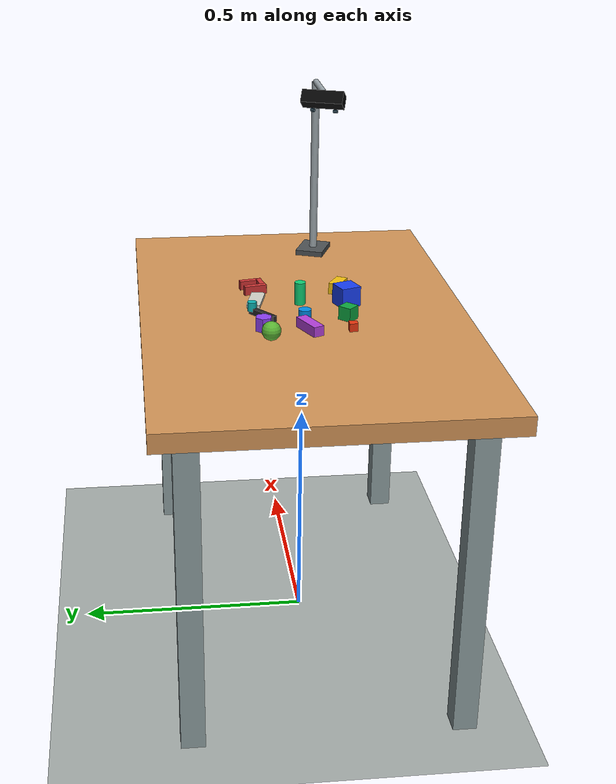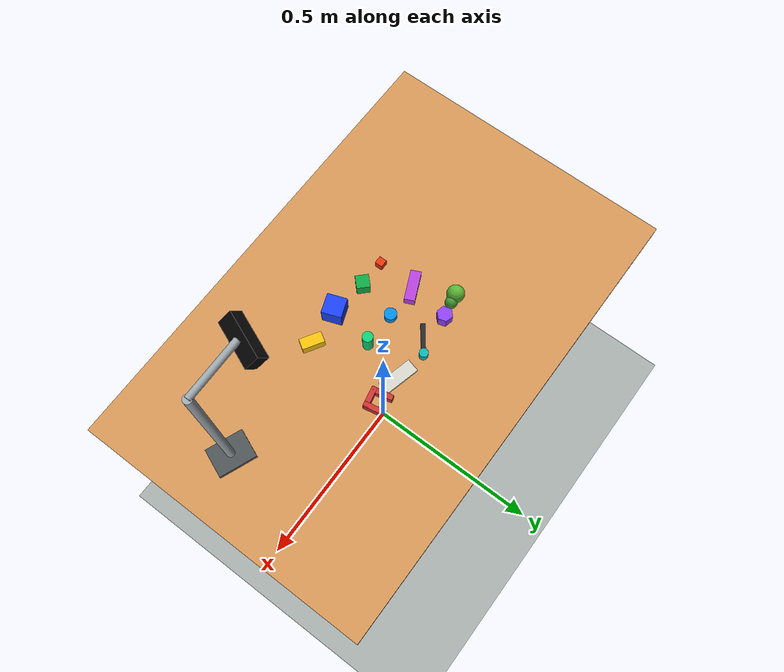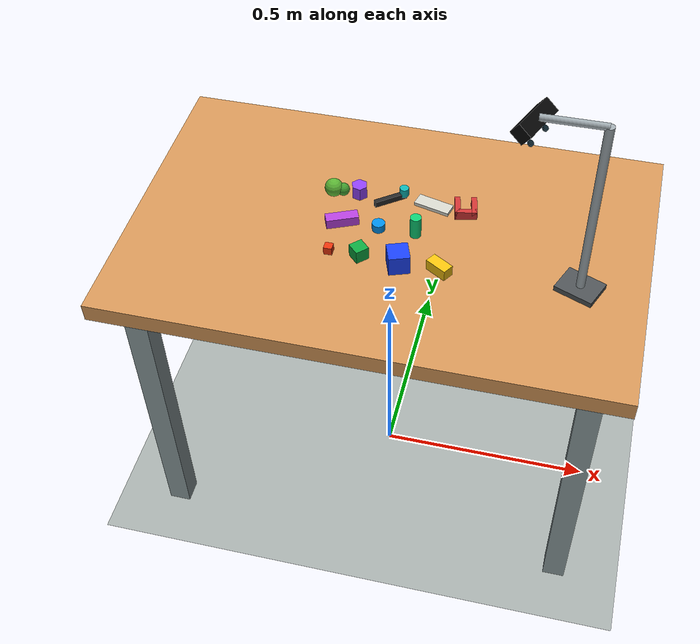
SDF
<sdf version="1.9">
 <world name="ghost_mgg_m8_shape_library">
  <plugin filename="gz-sim-physics-system" name="gz::sim::systems::Physics"/>
  <plugin filename="gz-sim-sensors-system" name="gz::sim::systems::Sensors">
   <render_engine>ogre2</render_engine>
  </plugin>
  <plugin filename="gz-sim-user-commands-system" name="gz::sim::systems::UserCommands"/>
  <plugin filename="gz-sim-scene-broadcaster-system" name="gz::sim::systems::SceneBroadcaster"/>
  <scene>
   <ambient>0.55 0.58 0.62 1</ambient>
   <background>0.78 0.84 0.90 1</background>
   <shadows>false</shadows>
  </scene>
  <light name="key_light" type="directional">
   <pose>-1.5 -2.0 4.0 0 0 0</pose>
   <cast_shadows>false</cast_shadows>
   <diffuse>0.95 0.92 0.86 1</diffuse>
   <specular>0.35 0.35 0.35 1</specular>
   <direction>-0.55 0.18 -1.0</direction>
  </light>
  <model name="ground_plane">
   <static>true</static>
   <link name="ground_link">
    <collision name="ground_collision">
     <geometry><plane><normal>0 0 1</normal><size>5 5</size></plane></geometry>
    </collision>
    <visual name="ground_visual">
     <geometry><plane><normal>0 0 1</normal><size>5 5</size></plane></geometry>
     <material><ambient>0.50 0.53 0.52 1</ambient><diffuse>0.64 0.67 0.66 1</diffuse></material>
    </visual>
   </link>
  </model>
  <include><name>table</name><uri>model://table</uri></include>
  <include>
   <name>d435_stand_only</name>
   <uri>model://d435_stand_only</uri>
   <pose>0.410788 -0.079176 0.740000 0 0 -0.386880</pose>
  </include>
  <include>
   <name>d435_camera_head</name>
   <uri>model://d435_camera_head</uri>
   <pose>0.286775 -0.079936 1.105590 0 0.950000 2.754700</pose>
  </include>
  <include>
   <name>m8_small_cube</name>
   <uri>model://m8_small_cube</uri>
   <pose>-0.110 -0.090 0.749000 0 0 0.000</pose>
  </include>
  <include>
   <name>m8_medium_cube</name>
   <uri>model://m8_medium_cube</uri>
   <pose>-0.045 -0.090 0.755000 0 0 0.785</pose>
  </include>
  <include>
   <name>m8_large_cube</name>
   <uri>model://m8_large_cube</uri>
   <pose>0.040 -0.100 0.762500 0 0 0.350</pose>
  </include>
  <include>
   <name>m8_rect_box_2x1</name>
   <uri>model://m8_rect_box_2x1</uri>
   <pose>0.125 -0.095 0.752500 0 0 -0.550</pose>
  </include>
  <include>
   <name>m8_rect_box_3x1</name>
   <uri>model://m8_rect_box_3x1</uri>
   <pose>-0.105 0.000 0.751000 0 0 0.420</pose>
  </include>
  <include>
   <name>m8_short_cylinder</name>
   <uri>model://m8_short_cylinder</uri>
   <pose>-0.025 0.000 0.749000 0 0 0</pose>
  </include>
  <include>
   <name>m8_tall_cylinder</name>
   <uri>model://m8_tall_cylinder</uri>
   <pose>0.055 0.000 0.765000 0 0 0</pose>
  </include>
  <include>
   <name>m8_hex_prism</name>
   <uri>model://m8_hex_prism</uri>
   <pose>-0.090 0.095 0.755000 0 0 -0.250</pose>
  </include>
  <model name="m8_unknown_handle_target">
   <pose>-0.020 0.090 0.747000 0 0 0.650</pose>
   <static>false</static>
   <link name="body">
    <inertial>
     <mass>0.018</mass>
     <inertia><ixx>0.000002</ixx><iyy>0.000002</iyy><izz>0.000002</izz></inertia>
    </inertial>
    <visual name="bar_visual">
     <geometry><box><size>0.075 0.010 0.014</size></box></geometry>
     <material><ambient>0.15 0.15 0.15 1</ambient><diffuse>0.15 0.15 0.15 1</diffuse></material>
    </visual>
    <visual name="grip_visual">
     <pose>0.033 0 0.010 0 0 0</pose>
     <geometry><cylinder><radius>0.010</radius><length>0.020</length></cylinder></geometry>
     <material><ambient>0.05 0.7 0.7 1</ambient><diffuse>0.05 0.7 0.7 1</diffuse></material>
    </visual>
    <collision name="bar_collision"><geometry><box><size>0.075 0.010 0.014</size></box></geometry></collision>
    <collision name="grip_collision">
     <pose>0.033 0 0.010 0 0 0</pose>
     <geometry><cylinder><radius>0.010</radius><length>0.020</length></cylinder></geometry>
    </collision>
   </link>
  </model>
  <model name="m8_unknown_thin_plate">
   <pose>0.075 0.095 0.744000 0 0 -0.250</pose>
   <static>false</static>
   <link name="body">
    <inertial>
     <mass>0.012</mass>
     <inertia><ixx>0.000001</ixx><iyy>0.000001</iyy><izz>0.000001</izz></inertia>
    </inertial>
    <visual name="visual">
     <geometry><box><size>0.080 0.030 0.008</size></box></geometry>
     <material><ambient>0.82 0.82 0.78 1</ambient><diffuse>0.82 0.82 0.78 1</diffuse></material>
    </visual>
    <collision name="collision"><geometry><box><size>0.080 0.030 0.008</size></box></geometry></collision>
   </link>
  </model>
  <model name="m8_unknown_concave_target">
   <pose>0.145 0.095 0.750000 0 0 0.200</pose>
   <static>false</static>
   <link name="body">
    <inertial>
     <mass>0.025</mass>
     <inertia><ixx>0.000003</ixx><iyy>0.000003</iyy><izz>0.000003</izz></inertia>
    </inertial>
    <visual name="left">
     <pose>-0.018 0 0 0 0 0</pose>
     <geometry><box><size>0.012 0.050 0.020</size></box></geometry>
     <material><ambient>0.8 0.2 0.2 1</ambient><diffuse>0.8 0.2 0.2 1</diffuse></material>
    </visual>
    <visual name="right">
     <pose>0.018 0 0 0 0 0</pose>
     <geometry><box><size>0.012 0.050 0.020</size></box></geometry>
     <material><ambient>0.8 0.2 0.2 1</ambient><diffuse>0.8 0.2 0.2 1</diffuse></material>
    </visual>
    <visual name="base">
     <pose>0 -0.019 0 0 0 0</pose>
     <geometry><box><size>0.048 0.012 0.020</size></box></geometry>
     <material><ambient>0.8 0.2 0.2 1</ambient><diffuse>0.8 0.2 0.2 1</diffuse></material>
    </visual>
    <collision name="left_collision">
     <pose>-0.018 0 0 0 0 0</pose>
     <geometry><box><size>0.012 0.050 0.020</size></box></geometry>
    </collision>
    <collision name="right_collision">
     <pose>0.018 0 0 0 0 0</pose>
     <geometry><box><size>0.012 0.050 0.020</size></box></geometry>
    </collision>
    <collision name="base_collision">
     <pose>0 -0.019 0 0 0 0</pose>
     <geometry><box><size>0.048 0.012 0.020</size></box></geometry>
    </collision>
   </link>
  </model>
  <model name="m8_unknown_blob_target">
   <pose>-0.145 0.085 0.760000 0 0 -0.350</pose>
   <static>false</static>
   <link name="body">
    <inertial>
     <mass>0.020</mass>
     <inertia><ixx>0.000002</ixx><iyy>0.000002</iyy><izz>0.000002</izz></inertia>
    </inertial>
    <visual name="core">
     <geometry><sphere><radius>0.020</radius></sphere></geometry>
     <material><ambient>0.35 0.70 0.20 1</ambient><diffuse>0.35 0.70 0.20 1</diffuse></material>
    </visual>
    <visual name="lobe">
     <pose>0.018 0.010 -0.004 0 0 0</pose>
     <geometry><sphere><radius>0.014</radius></sphere></geometry>
     <material><ambient>0.25 0.60 0.18 1</ambient><diffuse>0.25 0.60 0.18 1</diffuse></material>
    </visual>
    <collision name="core_collision"><geometry><sphere><radius>0.020</radius></sphere></geometry></collision>
    <collision name="lobe_collision">
     <pose>0.018 0.010 -0.004 0 0 0</pose>
     <geometry><sphere><radius>0.014</radius></sphere></geometry>
    </collision>
   </link>
  </model>
 </world>
</sdf>

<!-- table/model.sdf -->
<sdf version="1.9">
  <model name="table">
    <static>true</static>

    <link name="table_link">
      <visual name="top_visual">
        <pose>0 0 0.72 0 0 0</pose>
        <geometry>
          <box>
            <size>1.10 0.70 0.04</size>
          </box>
        </geometry>
        <material>
          <ambient>0.70 0.48 0.28 1</ambient>
          <diffuse>0.82 0.58 0.34 1</diffuse>
          <specular>0.15 0.12 0.08 1</specular>
        </material>
      </visual>
      <collision name="top_collision">
        <pose>0 0 0.72 0 0 0</pose>
        <geometry>
          <box>
            <size>1.10 0.70 0.04</size>
          </box>
        </geometry>
        <surface>
          <friction>
            <ode>
              <mu>1.2</mu>
              <mu2>1.2</mu2>
            </ode>
          </friction>
          <contact>
            <ode>
              <kp>1000000.0</kp>
              <kd>10.0</kd>
            </ode>
          </contact>
        </surface>
      </collision>

      <visual name="leg_front_left_visual">
        <pose>0.47 0.28 0.35 0 0 0</pose>
        <geometry>
          <box>
            <size>0.05 0.05 0.70</size>
          </box>
        </geometry>
        <material>
          <ambient>0.44 0.49 0.50 1</ambient>
          <diffuse>0.55 0.61 0.62 1</diffuse>
          <specular>0.25 0.25 0.25 1</specular>
        </material>
      </visual>
      <collision name="leg_front_left_collision">
        <pose>0.47 0.28 0.35 0 0 0</pose>
        <geometry>
          <box>
            <size>0.05 0.05 0.70</size>
          </box>
        </geometry>
      </collision>

      <visual name="leg_front_right_visual">
        <pose>0.47 -0.28 0.35 0 0 0</pose>
        <geometry>
          <box>
            <size>0.05 0.05 0.70</size>
          </box>
        </geometry>
        <material>
          <ambient>0.44 0.49 0.50 1</ambient>
          <diffuse>0.55 0.61 0.62 1</diffuse>
          <specular>0.25 0.25 0.25 1</specular>
        </material>
      </visual>
      <collision name="leg_front_right_collision">
        <pose>0.47 -0.28 0.35 0 0 0</pose>
        <geometry>
          <box>
            <size>0.05 0.05 0.70</size>
          </box>
        </geometry>
      </collision>

      <visual name="leg_back_left_visual">
        <pose>-0.47 0.28 0.35 0 0 0</pose>
        <geometry>
          <box>
            <size>0.05 0.05 0.70</size>
          </box>
        </geometry>
        <material>
          <ambient>0.44 0.49 0.50 1</ambient>
          <diffuse>0.55 0.61 0.62 1</diffuse>
          <specular>0.25 0.25 0.25 1</specular>
        </material>
      </visual>
      <collision name="leg_back_left_collision">
        <pose>-0.47 0.28 0.35 0 0 0</pose>
        <geometry>
          <box>
            <size>0.05 0.05 0.70</size>
          </box>
        </geometry>
      </collision>

      <visual name="leg_back_right_visual">
        <pose>-0.47 -0.28 0.35 0 0 0</pose>
        <geometry>
          <box>
            <size>0.05 0.05 0.70</size>
          </box>
        </geometry>
        <material>
          <ambient>0.44 0.49 0.50 1</ambient>
          <diffuse>0.55 0.61 0.62 1</diffuse>
          <specular>0.25 0.25 0.25 1</specular>
        </material>
      </visual>
      <collision name="leg_back_right_collision">
        <pose>-0.47 -0.28 0.35 0 0 0</pose>
        <geometry>
          <box>
            <size>0.05 0.05 0.70</size>
          </box>
        </geometry>
      </collision>
    </link>
  </model>
</sdf>

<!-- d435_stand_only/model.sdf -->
<sdf version="1.9">
  <model name="d435_stand_only">
    <static>true</static>

    <link name="stand_link">
      <visual name="tabletop_base_visual">
        <pose>0 0 0.006 0 0 0</pose>
        <geometry>
          <box>
            <size>0.085 0.065 0.012</size>
          </box>
        </geometry>
        <material>
          <ambient>0.18 0.19 0.20 1</ambient>
          <diffuse>0.30 0.32 0.33 1</diffuse>
          <specular>0.25 0.25 0.25 1</specular>
        </material>
      </visual>
      <collision name="tabletop_base_collision">
        <pose>0 0 0.006 0 0 0</pose>
        <geometry>
          <box>
            <size>0.085 0.065 0.012</size>
          </box>
        </geometry>
      </collision>

      <visual name="short_pole_visual">
        <pose>0 0 0.207 0 0 0</pose>
        <geometry>
          <cylinder>
            <radius>0.009</radius>
            <length>0.405</length>
          </cylinder>
        </geometry>
        <material>
          <ambient>0.45 0.48 0.50 1</ambient>
          <diffuse>0.62 0.66 0.68 1</diffuse>
          <specular>0.35 0.35 0.35 1</specular>
        </material>
      </visual>
      <collision name="short_pole_collision">
        <pose>0 0 0.207 0 0 0</pose>
        <geometry>
          <cylinder>
            <radius>0.009</radius>
            <length>0.405</length>
          </cylinder>
        </geometry>
      </collision>

      <visual name="short_support_arm_visual">
        <pose>-0.0573 -0.0237 0.4086 0 1.5708 -2.7485</pose>
        <geometry>
          <cylinder>
            <radius>0.007</radius>
            <length>0.124</length>
          </cylinder>
        </geometry>
        <material>
          <ambient>0.45 0.48 0.50 1</ambient>
          <diffuse>0.62 0.66 0.68 1</diffuse>
          <specular>0.35 0.35 0.35 1</specular>
        </material>
      </visual>
      <collision name="short_support_arm_collision">
        <pose>-0.0573 -0.0237 0.4086 0 1.5708 -2.7485</pose>
        <geometry>
          <cylinder>
            <radius>0.007</radius>
            <length>0.124</length>
          </cylinder>
        </geometry>
      </collision>
    </link>
  </model>
</sdf>

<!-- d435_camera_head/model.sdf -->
<sdf version="1.9">
  <model name="d435_camera_head">
    <static>true</static>

    <link name="camera_link">
      <visual name="downward_camera_head_visual">
        <pose>-0.020 0 0.025 0 0 0</pose>
        <geometry>
          <box>
            <size>0.030 0.095 0.032</size>
          </box>
        </geometry>
        <material>
          <ambient>0.01 0.01 0.01 1</ambient>
          <diffuse>0.02 0.02 0.02 1</diffuse>
          <specular>0.14 0.14 0.14 1</specular>
        </material>
      </visual>
      <collision name="downward_camera_head_collision">
        <pose>-0.020 0 0.025 0 0 0</pose>
        <geometry>
          <box>
            <size>0.030 0.095 0.032</size>
          </box>
        </geometry>
      </collision>

      <visual name="lens_down_left_visual">
        <pose>-0.004 -0.026 0.000 0 1.5708 0</pose>
        <geometry>
          <cylinder>
            <radius>0.006</radius>
            <length>0.004</length>
          </cylinder>
        </geometry>
        <material>
          <ambient>0.03 0.07 0.09 1</ambient>
          <diffuse>0.04 0.12 0.16 1</diffuse>
          <specular>0.30 0.30 0.30 1</specular>
        </material>
      </visual>

      <visual name="lens_down_right_visual">
        <pose>-0.004 0.026 0.000 0 1.5708 0</pose>
        <geometry>
          <cylinder>
            <radius>0.006</radius>
            <length>0.004</length>
          </cylinder>
        </geometry>
        <material>
          <ambient>0.03 0.07 0.09 1</ambient>
          <diffuse>0.04 0.12 0.16 1</diffuse>
          <specular>0.30 0.30 0.30 1</specular>
        </material>
      </visual>

      <sensor name="target_rgb_camera" type="camera">
        <pose>0 0 0 0 0 0</pose>
        <camera>
          <horizontal_fov>0.72</horizontal_fov>
          <image>
            <width>640</width>
            <height>480</height>
            <format>R8G8B8</format>
          </image>
          <clip>
            <near>0.02</near>
            <far>2.0</far>
          </clip>
        </camera>
        <always_on>1</always_on>
        <update_rate>10</update_rate>
        <visualize>true</visualize>
        <topic>ghost_mgg/d435/color/image_raw</topic>
      </sensor>

      <sensor name="target_depth_camera" type="depth_camera">
        <pose>0 0 0 0 0 0</pose>
        <camera>
          <horizontal_fov>0.72</horizontal_fov>
          <image>
            <width>640</width>
            <height>480</height>
            <format>R_FLOAT32</format>
          </image>
          <clip>
            <near>0.02</near>
            <far>2.0</far>
          </clip>
        </camera>
        <always_on>1</always_on>
        <update_rate>10</update_rate>
        <visualize>false</visualize>
        <topic>ghost_mgg/d435/depth/image_rect_raw</topic>
      </sensor>

      <sensor name="target_infra1_camera" type="camera">
        <pose>0 -0.026 0 0 0 0</pose>
        <camera>
          <horizontal_fov>0.72</horizontal_fov>
          <image>
            <width>640</width>
            <height>480</height>
            <format>L8</format>
          </image>
          <clip>
            <near>0.02</near>
            <far>2.0</far>
          </clip>
        </camera>
        <always_on>1</always_on>
        <update_rate>10</update_rate>
        <visualize>false</visualize>
        <topic>ghost_mgg/d435/infra1/image_rect_raw</topic>
      </sensor>

      <sensor name="target_infra2_camera" type="camera">
        <pose>0 0.026 0 0 0 0</pose>
        <camera>
          <horizontal_fov>0.72</horizontal_fov>
          <image>
            <width>640</width>
            <height>480</height>
            <format>L8</format>
          </image>
          <clip>
            <near>0.02</near>
            <far>2.0</far>
          </clip>
        </camera>
        <always_on>1</always_on>
        <update_rate>10</update_rate>
        <visualize>false</visualize>
        <topic>ghost_mgg/d435/infra2/image_rect_raw</topic>
      </sensor>
    </link>
  </model>
</sdf>

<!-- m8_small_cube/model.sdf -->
<sdf version="1.9">
  <model name="m8_small_cube">
    <static>false</static>
    <link name="body">
      <inertial><mass>0.015</mass><inertia><ixx>0.000001</ixx><iyy>0.000001</iyy><izz>0.000001</izz></inertia></inertial>
      <visual name="visual"><geometry><box><size>0.018 0.018 0.018</size></box></geometry><material><ambient>0.9 0.2 0.05 1</ambient><diffuse>0.9 0.2 0.05 1</diffuse></material></visual>
      <collision name="collision"><geometry><box><size>0.018 0.018 0.018</size></box></geometry><surface><friction><ode><mu>1.5</mu><mu2>1.5</mu2></ode></friction><contact><ode><kp>1000000.0</kp><kd>10.0</kd></ode></contact></surface></collision>
    </link>
  </model>
</sdf>

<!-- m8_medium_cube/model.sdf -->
<sdf version="1.9">
  <model name="m8_medium_cube">
    <static>false</static>
    <link name="body">
      <inertial><mass>0.025</mass><inertia><ixx>0.000003</ixx><iyy>0.000003</iyy><izz>0.000003</izz></inertia></inertial>
      <visual name="visual"><geometry><box><size>0.030 0.030 0.030</size></box></geometry><material><ambient>0.05 0.65 0.25 1</ambient><diffuse>0.05 0.65 0.25 1</diffuse></material></visual>
      <collision name="collision"><geometry><box><size>0.030 0.030 0.030</size></box></geometry><surface><friction><ode><mu>1.5</mu><mu2>1.5</mu2></ode></friction><contact><ode><kp>1000000.0</kp><kd>10.0</kd></ode></contact></surface></collision>
    </link>
  </model>
</sdf>

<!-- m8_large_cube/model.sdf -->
<sdf version="1.9">
  <model name="m8_large_cube">
    <static>false</static>
    <link name="body">
      <inertial><mass>0.040</mass><inertia><ixx>0.000007</ixx><iyy>0.000007</iyy><izz>0.000007</izz></inertia></inertial>
      <visual name="visual"><geometry><box><size>0.045 0.045 0.045</size></box></geometry><material><ambient>0.1 0.25 0.95 1</ambient><diffuse>0.1 0.25 0.95 1</diffuse></material></visual>
      <collision name="collision"><geometry><box><size>0.045 0.045 0.045</size></box></geometry><surface><friction><ode><mu>1.5</mu><mu2>1.5</mu2></ode></friction><contact><ode><kp>1000000.0</kp><kd>10.0</kd></ode></contact></surface></collision>
    </link>
  </model>
</sdf>

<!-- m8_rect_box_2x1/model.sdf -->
<sdf version="1.9">
  <model name="m8_rect_box_2x1">
    <static>false</static>
    <link name="body">
      <inertial><mass>0.030</mass><inertia><ixx>0.000004</ixx><iyy>0.000004</iyy><izz>0.000004</izz></inertia></inertial>
      <visual name="visual"><geometry><box><size>0.050 0.025 0.025</size></box></geometry><material><ambient>0.95 0.75 0.05 1</ambient><diffuse>0.95 0.75 0.05 1</diffuse></material></visual>
      <collision name="collision"><geometry><box><size>0.050 0.025 0.025</size></box></geometry><surface><friction><ode><mu>1.5</mu><mu2>1.5</mu2></ode></friction><contact><ode><kp>1000000.0</kp><kd>10.0</kd></ode></contact></surface></collision>
    </link>
  </model>
</sdf>

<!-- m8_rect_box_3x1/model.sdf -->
<sdf version="1.9">
  <model name="m8_rect_box_3x1">
    <static>false</static>
    <link name="body">
      <inertial><mass>0.035</mass><inertia><ixx>0.000005</ixx><iyy>0.000005</iyy><izz>0.000005</izz></inertia></inertial>
      <visual name="visual"><geometry><box><size>0.070 0.024 0.022</size></box></geometry><material><ambient>0.7 0.25 0.85 1</ambient><diffuse>0.7 0.25 0.85 1</diffuse></material></visual>
      <collision name="collision"><geometry><box><size>0.070 0.024 0.022</size></box></geometry><surface><friction><ode><mu>1.5</mu><mu2>1.5</mu2></ode></friction><contact><ode><kp>1000000.0</kp><kd>10.0</kd></ode></contact></surface></collision>
    </link>
  </model>
</sdf>

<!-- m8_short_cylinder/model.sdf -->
<sdf version="1.9">
  <model name="m8_short_cylinder">
    <static>false</static>
    <link name="body">
      <inertial><mass>0.018</mass><inertia><ixx>0.000002</ixx><iyy>0.000002</iyy><izz>0.000002</izz></inertia></inertial>
      <visual name="visual"><geometry><cylinder><radius>0.014</radius><length>0.018</length></cylinder></geometry><material><ambient>0.0 0.55 0.9 1</ambient><diffuse>0.0 0.55 0.9 1</diffuse></material></visual>
      <collision name="collision"><geometry><cylinder><radius>0.014</radius><length>0.018</length></cylinder></geometry><surface><friction><ode><mu>1.5</mu><mu2>1.5</mu2></ode></friction><contact><ode><kp>1000000.0</kp><kd>10.0</kd></ode></contact></surface></collision>
    </link>
  </model>
</sdf>

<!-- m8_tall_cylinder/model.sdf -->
<sdf version="1.9">
  <model name="m8_tall_cylinder">
    <static>false</static>
    <link name="body">
      <inertial><mass>0.030</mass><inertia><ixx>0.000004</ixx><iyy>0.000004</iyy><izz>0.000003</izz></inertia></inertial>
      <visual name="visual"><geometry><cylinder><radius>0.012</radius><length>0.050</length></cylinder></geometry><material><ambient>0.05 0.8 0.45 1</ambient><diffuse>0.05 0.8 0.45 1</diffuse></material></visual>
      <collision name="collision"><geometry><cylinder><radius>0.012</radius><length>0.050</length></cylinder></geometry><surface><friction><ode><mu>1.5</mu><mu2>1.5</mu2></ode></friction><contact><ode><kp>1000000.0</kp><kd>10.0</kd></ode></contact></surface></collision>
    </link>
  </model>
</sdf>

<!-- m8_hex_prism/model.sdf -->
<sdf version="1.9">
  <model name="m8_hex_prism">
    <static>false</static>
    <link name="body">
      <inertial><mass>0.024</mass><inertia><ixx>0.000003</ixx><iyy>0.000003</iyy><izz>0.000003</izz></inertia></inertial>
      <visual name="visual"><geometry><mesh><uri>model://m8_hex_prism/meshes/hex_prism.obj</uri></mesh></geometry><material><ambient>0.55 0.25 0.95 1</ambient><diffuse>0.55 0.25 0.95 1</diffuse></material></visual>
      <collision name="collision"><geometry><box><size>0.036 0.031 0.030</size></box></geometry><surface><friction><ode><mu>1.5</mu><mu2>1.5</mu2></ode></friction><contact><ode><kp>1000000.0</kp><kd>10.0</kd></ode></contact></surface></collision>
    </link>
  </model>
</sdf>
